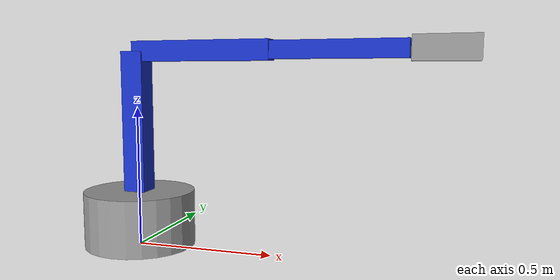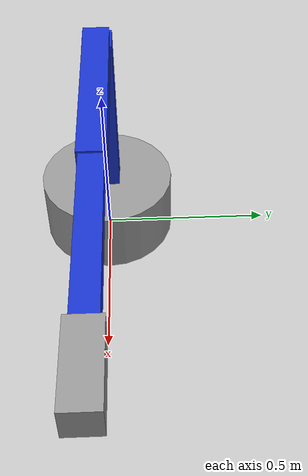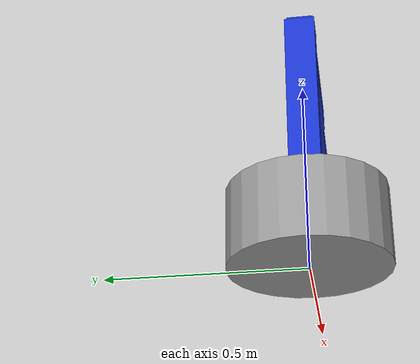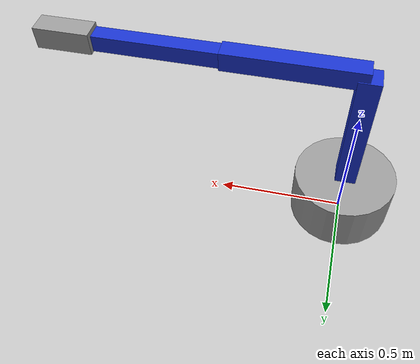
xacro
<?xml version="1.0"?>
<robot xmlns:xacro="http://www.ros.org/wiki/xacro" name="robot_arm">
  <xacro:arg name="controllers_file" default="/tmp/ros2_controllers.yaml"/>

  <material name="blue"><color rgba="0.1 0.2 0.8 1.0"/></material>
  <material name="gray"><color rgba="0.6 0.6 0.6 1.0"/></material>

  <link name="base_link">
    <inertial>
      <origin xyz="0 0 0.1"/>
      <mass value="10.0"/>
      <inertia ixx="0.2" ixy="0" ixz="0" iyy="0.2" iyz="0" izz="0.2"/>
    </inertial>
    <visual>
      <origin xyz="0 0 0.1"/>
      <geometry><cylinder radius="0.2" length="0.2"/></geometry>
      <material name="gray"/>
    </visual>
    <collision>
      <origin xyz="0 0 0.1"/>
      <geometry><cylinder radius="0.2" length="0.2"/></geometry>
    </collision>
  </link>

  <link name="link1">
    <inertial><origin xyz="0 0 0.25"/><mass value="4.0"/><inertia ixx="0.05" ixy="0" ixz="0" iyy="0.05" iyz="0" izz="0.01"/></inertial>
    <visual><origin xyz="0 0 0.25"/><geometry><box size="0.08 0.08 0.5"/></geometry><material name="blue"/></visual>
    <collision><origin xyz="0 0 0.25"/><geometry><box size="0.08 0.08 0.5"/></geometry></collision>
  </link>

  <joint name="joint1" type="revolute">
    <parent link="base_link"/>
    <child link="link1"/>
    <origin xyz="0 0 0.2" rpy="0 0 0"/>
    <axis xyz="0 0 1"/>
    <limit lower="-3.14" upper="3.14" effort="50" velocity="1.5"/>
  </joint>

  <link name="link2">
    <inertial><origin xyz="0.25 0 0"/><mass value="3.0"/><inertia ixx="0.02" ixy="0" ixz="0" iyy="0.02" iyz="0" izz="0.02"/></inertial>
    <visual><origin xyz="0.25 0 0"/><geometry><box size="0.5 0.07 0.07"/></geometry><material name="blue"/></visual>
    <collision><origin xyz="0.25 0 0"/><geometry><box size="0.5 0.07 0.07"/></geometry></collision>
  </link>

  <joint name="joint2" type="revolute">
    <parent link="link1"/>
    <child link="link2"/>
    <origin xyz="0 0 0.5" rpy="0 0 0"/>
    <axis xyz="0 1 0"/>
    <limit lower="-1.57" upper="1.57" effort="40" velocity="1.5"/>
  </joint>

  <link name="link3">
    <inertial><origin xyz="0.22 0 0"/><mass value="2.0"/><inertia ixx="0.01" ixy="0" ixz="0" iyy="0.01" iyz="0" izz="0.01"/></inertial>
    <visual><origin xyz="0.22 0 0"/><geometry><box size="0.45 0.06 0.06"/></geometry><material name="blue"/></visual>
    <collision><origin xyz="0.22 0 0"/><geometry><box size="0.45 0.06 0.06"/></geometry></collision>
  </link>

  <joint name="joint3" type="revolute">
    <parent link="link2"/>
    <child link="link3"/>
    <origin xyz="0.5 0 0" rpy="0 0 0"/>
    <axis xyz="0 1 0"/>
    <limit lower="-2.0" upper="2.0" effort="30" velocity="1.5"/>
  </joint>

  <link name="gripper_link">
    <inertial><origin xyz="0.1 0 0"/><mass value="0.8"/><inertia ixx="0.005" ixy="0" ixz="0" iyy="0.005" iyz="0" izz="0.005"/></inertial>
    <visual><origin xyz="0.1 0 0"/><geometry><box size="0.2 0.08 0.08"/></geometry><material name="gray"/></visual>
    <collision><origin xyz="0.1 0 0"/><geometry><box size="0.2 0.08 0.08"/></geometry></collision>
  </link>

  <joint name="joint4" type="revolute">
    <parent link="link3"/>
    <child link="gripper_link"/>
    <origin xyz="0.45 0 0" rpy="0 0 0"/>
    <axis xyz="0 1 0"/>
    <limit lower="-2.0" upper="2.0" effort="20" velocity="2.0"/>
  </joint>

  <ros2_control name="GazeboSystem" type="system">
    <hardware>
      <plugin>gazebo_ros2_control/GazeboSystem</plugin>
    </hardware>
    <joint name="joint1"><command_interface name="position"/><state_interface name="position"/><state_interface name="velocity"/></joint>
    <joint name="joint2"><command_interface name="position"/><state_interface name="position"/><state_interface name="velocity"/></joint>
    <joint name="joint3"><command_interface name="position"/><state_interface name="position"/><state_interface name="velocity"/></joint>
    <joint name="joint4"><command_interface name="position"/><state_interface name="position"/><state_interface name="velocity"/></joint>
  </ros2_control>

  <gazebo>
    <plugin name="gazebo_ros2_control" filename="libgazebo_ros2_control.so">
      <parameters>$(arg controllers_file)</parameters>
    </plugin>
  </gazebo>
</robot>
